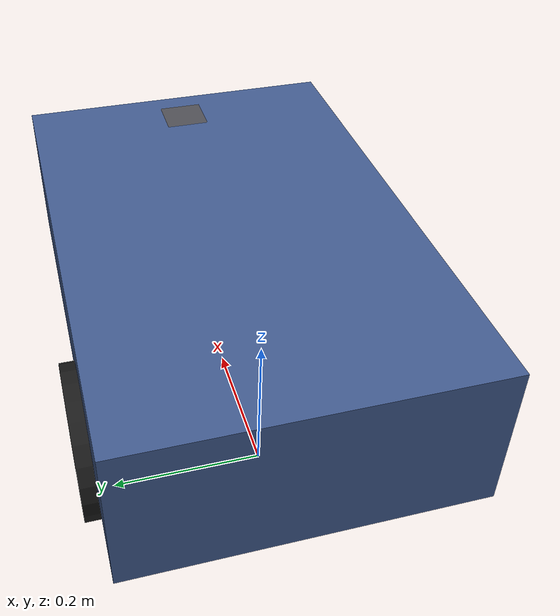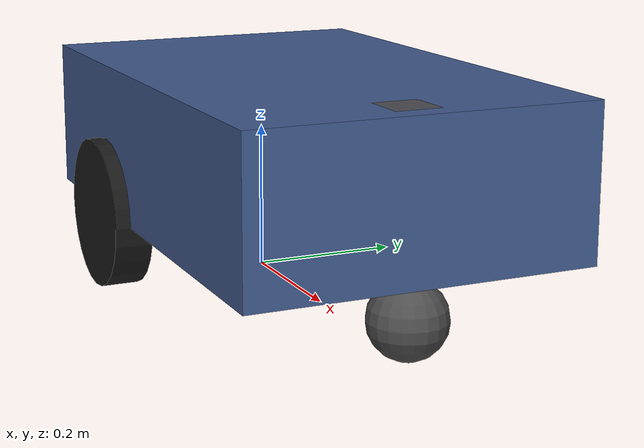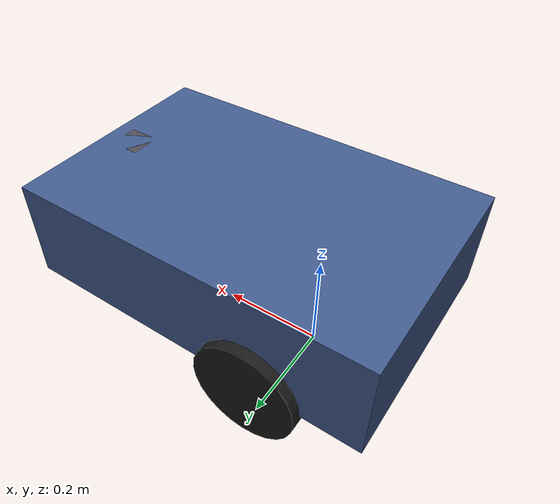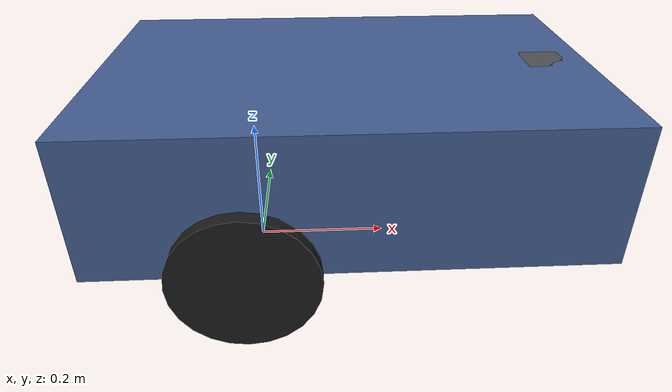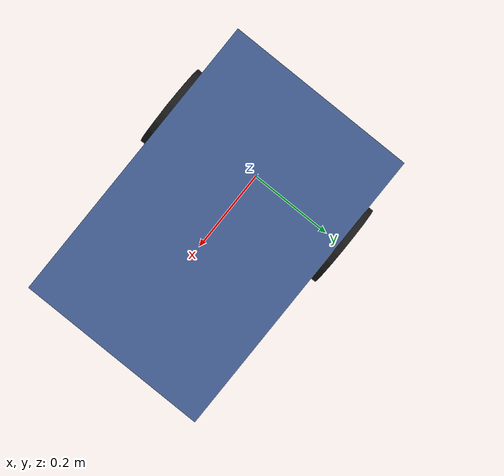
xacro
<?xml version="1.0"?>
<robot name="amr" xmlns:xacro="http://www.ros.org/wiki/xacro">

  <!-- ==== Identity ==== -->
  <xacro:arg name="name" default="amr1"/>
  <xacro:arg name="prefix" default="amr1/"/>

  <!-- ==== Mass / payload ==== -->
  <xacro:arg name="base_mass_kg" default="30.0"/>
  <xacro:arg name="payload_kg" default="0.0"/>

  <!-- ==== Drive geometry ==== -->
  <xacro:arg name="wheel_separation" default="0.44"/>
  <xacro:arg name="wheel_radius" default="0.10"/>
  <xacro:arg name="wheel_width" default="0.05"/>

  <!-- ==== Chassis geometry ==== -->
  <xacro:arg name="base_length" default="0.70"/>
  <xacro:arg name="base_width" default="0.45"/>
  <xacro:arg name="base_height" default="0.20"/>

  <!-- ==== Sensors (lidar_height is TUNABLE - smoke test 2 may revise it) ==== -->
  <xacro:arg name="lidar_height" default="0.20"/>
  <xacro:arg name="lidar_range_min" default="0.12"/>
  <xacro:arg name="lidar_range_max" default="12.0"/>
  <xacro:arg name="lidar_samples" default="360"/>
  <xacro:arg name="lidar_min_angle" default="-3.141592653589793"/>
  <xacro:arg name="lidar_max_angle" default="3.141592653589793"/>
  <xacro:arg name="lidar_update_rate" default="10.0"/>
  <xacro:arg name="imu_update_rate" default="100.0"/>

  <xacro:arg name="camera_enabled" default="false"/>
  <xacro:arg name="camera_width" default="160"/>
  <xacro:arg name="camera_height" default="120"/>
  <xacro:arg name="camera_update_rate" default="10.0"/>

  <xacro:arg name="body_color" default="0.25 0.35 0.55 1.0"/>

  <!-- ==== Kinodynamic limits (also fed to nav2_velocity_smoother in later phases,
           so simulation and planning read the SAME numbers) ==== -->
  <xacro:arg name="max_vel_x" default="0.60"/>
  <xacro:arg name="max_accel_x" default="0.40"/>
  <xacro:arg name="max_decel_x" default="-0.80"/>
  <xacro:arg name="max_vel_theta" default="1.20"/>
  <xacro:arg name="max_accel_theta" default="1.50"/>

  <!-- ==== Resolve args to properties ==== -->
  <xacro:property name="name" value="$(arg name)"/>
  <xacro:property name="prefix" value="$(arg prefix)"/>
  <xacro:property name="base_mass_kg" value="$(arg base_mass_kg)"/>
  <xacro:property name="payload_kg" value="$(arg payload_kg)"/>
  <xacro:property name="wheel_separation" value="$(arg wheel_separation)"/>
  <xacro:property name="wheel_radius" value="$(arg wheel_radius)"/>
  <xacro:property name="wheel_width" value="$(arg wheel_width)"/>
  <xacro:property name="base_length" value="$(arg base_length)"/>
  <xacro:property name="base_width" value="$(arg base_width)"/>
  <xacro:property name="base_height" value="$(arg base_height)"/>
  <xacro:property name="lidar_height" value="$(arg lidar_height)"/>
  <xacro:property name="body_color" value="$(arg body_color)"/>

  <!-- Total mass is what the physics engine sees; payload scaling elsewhere in the
       stack (SafetyGate's k, PayloadJerkAdapter's limits) keys off payload_kg. -->
  <xacro:property name="total_mass" value="${base_mass_kg + payload_kg}"/>

  <!-- base_link sits at the drive-axle height, so z=0 of base_link is wheel_radius
       above the ground. Sensor heights given from ground are converted here. -->
  <xacro:property name="lidar_z_in_base" value="${lidar_height - wheel_radius}"/>
  <xacro:property name="caster_radius" value="${wheel_radius / 2.0}"/>

  <xacro:property name="body_x" value="${0.20 * base_length}"/>

  <xacro:property name="wheel_mass" value="${0.04 * total_mass}"/>
  <xacro:property name="body_mass" value="${total_mass - 2.0 * wheel_mass}"/>

  <!-- ============================ Links ============================ -->

  <link name="${prefix}base_footprint"/>

  <joint name="${prefix}base_joint" type="fixed">
    <parent link="${prefix}base_footprint"/>
    <child link="${prefix}base_link"/>
    <origin xyz="0 0 ${wheel_radius}" rpy="0 0 0"/>
  </joint>

  <link name="${prefix}base_link">
    <visual>
      <origin xyz="${body_x} 0 ${base_height / 2.0}" rpy="0 0 0"/>
      <geometry>
        <box size="${base_length} ${base_width} ${base_height}"/>
      </geometry>
      <material name="${name}_body">
        <color rgba="${body_color}"/>
      </material>
    </visual>
    <collision>
      <origin xyz="${body_x} 0 ${base_height / 2.0}" rpy="0 0 0"/>
      <geometry>
        <box size="${base_length} ${base_width} ${base_height}"/>
      </geometry>
    </collision>
    <inertial>
      <origin xyz="${body_x} 0 ${base_height / 2.0}" rpy="0 0 0"/>
      <mass value="${body_mass}"/>
      <!-- Solid-box inertia about the box centre. -->
      <inertia
        ixx="${body_mass * (base_width * base_width + base_height * base_height) / 12.0}"
        ixy="0.0" ixz="0.0"
        iyy="${body_mass * (base_length * base_length + base_height * base_height) / 12.0}"
        iyz="0.0"
        izz="${body_mass * (base_length * base_length + base_width * base_width) / 12.0}"/>
    </inertial>
  </link>

  <!-- Drive wheels. reflect=+1 is left, -1 is right. -->
  <xacro:macro name="drive_wheel" params="side reflect">
    <link name="${prefix}${side}_wheel_link">
      <visual>
        <origin xyz="0 0 0" rpy="${pi / 2.0} 0 0"/>
        <geometry>
          <cylinder radius="${wheel_radius}" length="${wheel_width}"/>
        </geometry>
        <material name="amr_wheel">
          <color rgba="0.1 0.1 0.1 1.0"/>
        </material>
      </visual>
      <collision>
        <origin xyz="0 0 0" rpy="${pi / 2.0} 0 0"/>
        <geometry>
          <cylinder radius="${wheel_radius}" length="${wheel_width}"/>
        </geometry>
      </collision>
      <inertial>
        <origin xyz="0 0 0" rpy="${pi / 2.0} 0 0"/>
        <mass value="${wheel_mass}"/>
        <inertia
          ixx="${wheel_mass * (3.0 * wheel_radius * wheel_radius
                               + wheel_width * wheel_width) / 12.0}"
          ixy="0.0" ixz="0.0"
          iyy="${wheel_mass * (3.0 * wheel_radius * wheel_radius
                               + wheel_width * wheel_width) / 12.0}"
          iyz="0.0"
          izz="${wheel_mass * wheel_radius * wheel_radius / 2.0}"/>
      </inertial>
    </link>

    <joint name="${prefix}${side}_wheel_joint" type="continuous">
      <parent link="${prefix}base_link"/>
      <child link="${prefix}${side}_wheel_link"/>
      <origin xyz="0 ${reflect * wheel_separation / 2.0} 0" rpy="0 0 0"/>
      <axis xyz="0 1 0"/>
    </joint>
  </xacro:macro>

  <xacro:drive_wheel side="left" reflect="1"/>
  <xacro:drive_wheel side="right" reflect="-1"/>

  <!-- Single passive front caster, kept low-friction so it does not fight the
       differential drive. See the body_x note above for why there is exactly one. -->
  <xacro:macro name="caster" params="side reflect">
    <link name="${prefix}${side}_caster_link">
      <visual>
        <geometry>
          <sphere radius="${caster_radius}"/>
        </geometry>
        <material name="amr_caster">
          <color rgba="0.3 0.3 0.3 1.0"/>
        </material>
      </visual>
      <collision>
        <geometry>
          <sphere radius="${caster_radius}"/>
        </geometry>
      </collision>
      <inertial>
        <mass value="${0.005 * total_mass}"/>
        <inertia
          ixx="${0.002 * total_mass * caster_radius * caster_radius}"
          ixy="0.0" ixz="0.0"
          iyy="${0.002 * total_mass * caster_radius * caster_radius}"
          iyz="0.0"
          izz="${0.002 * total_mass * caster_radius * caster_radius}"/>
      </inertial>
    </link>

    <joint name="${prefix}${side}_caster_joint" type="fixed">
      <parent link="${prefix}base_link"/>
      <child link="${prefix}${side}_caster_link"/>
      <origin
        xyz="${body_x + reflect * (base_length / 2.0 - caster_radius)} 0
             ${caster_radius - wheel_radius}"
        rpy="0 0 0"/>
    </joint>
  </xacro:macro>

  <xacro:caster side="front" reflect="1"/>

  <xacro:property name="mast_top" value="${lidar_height - wheel_radius}"/>
  <xacro:property name="mast_bottom" value="${base_height}"/>
  <link name="${prefix}mast">
    <visual>
      <origin xyz="0 0 ${(mast_top + mast_bottom) / 2.0}" rpy="0 0 0"/>
      <geometry>
        <box size="0.06 0.06 ${mast_top - mast_bottom}"/>
      </geometry>
      <material name="amr_mast">
        <color rgba="0.3 0.3 0.32 1.0"/>
      </material>
    </visual>
    <inertial>
      <mass value="0.05"/>
      <inertia ixx="1e-5" ixy="0.0" ixz="0.0" iyy="1e-5" iyz="0.0" izz="1e-5"/>
    </inertial>
  </link>

  <joint name="${prefix}mast_joint" type="fixed">
    <parent link="${prefix}base_link"/>
    <child link="${prefix}mast"/>
    <origin xyz="${body_x + base_length / 2.0 - 0.06} 0 0" rpy="0 0 0"/>
  </joint>

  <!-- 2D LiDAR. Height above ground is the tunable that smoke test 2 informs. -->
  <link name="${prefix}laser">
    <visual>
      <geometry>
        <cylinder radius="0.04" length="0.05"/>
      </geometry>
      <material name="amr_lidar">
        <color rgba="0.8 0.2 0.2 1.0"/>
      </material>
    </visual>
    <inertial>
      <mass value="0.1"/>
      <inertia ixx="1e-4" ixy="0.0" ixz="0.0" iyy="1e-4" iyz="0.0" izz="1e-4"/>
    </inertial>
  </link>

  <joint name="${prefix}laser_joint" type="fixed">
    <parent link="${prefix}base_link"/>
    <child link="${prefix}laser"/>
    <origin xyz="${body_x + base_length / 2.0 - 0.06} 0 ${lidar_z_in_base}" rpy="0 0 0"/>
  </joint>

  <link name="${prefix}imu_link">
    <inertial>
      <mass value="0.02"/>
      <inertia ixx="1e-6" ixy="0.0" ixz="0.0" iyy="1e-6" iyz="0.0" izz="1e-6"/>
    </inertial>
  </link>

  <joint name="${prefix}imu_joint" type="fixed">
    <parent link="${prefix}base_link"/>
    <child link="${prefix}imu_link"/>
    <origin xyz="${body_x} 0 ${base_height / 2.0}" rpy="0 0 0"/>
  </joint>

  <!-- Forward camera, on the front face of the chassis looking down the +x axis. -->
  <xacro:if value="$(arg camera_enabled)">
    <link name="${prefix}camera_link">
      <inertial>
        <mass value="0.02"/>
        <inertia ixx="1e-6" ixy="0.0" ixz="0.0" iyy="1e-6" iyz="0.0" izz="1e-6"/>
      </inertial>
    </link>

    <joint name="${prefix}camera_joint" type="fixed">
      <parent link="${prefix}base_link"/>
      <child link="${prefix}camera_link"/>
      <origin xyz="${body_x + base_length / 2.0} 0 ${base_height / 2.0}" rpy="0 0 0"/>
    </joint>
  </xacro:if>

  <!-- Gazebo sensors, materials and the differential drive system. -->
  <!-- Relative include: resolves both in-source and from the installed share/
       directory, and avoids depending on the package index being on the path. -->
  <xacro:include filename="amr_gazebo.xacro"/>

</robot>
